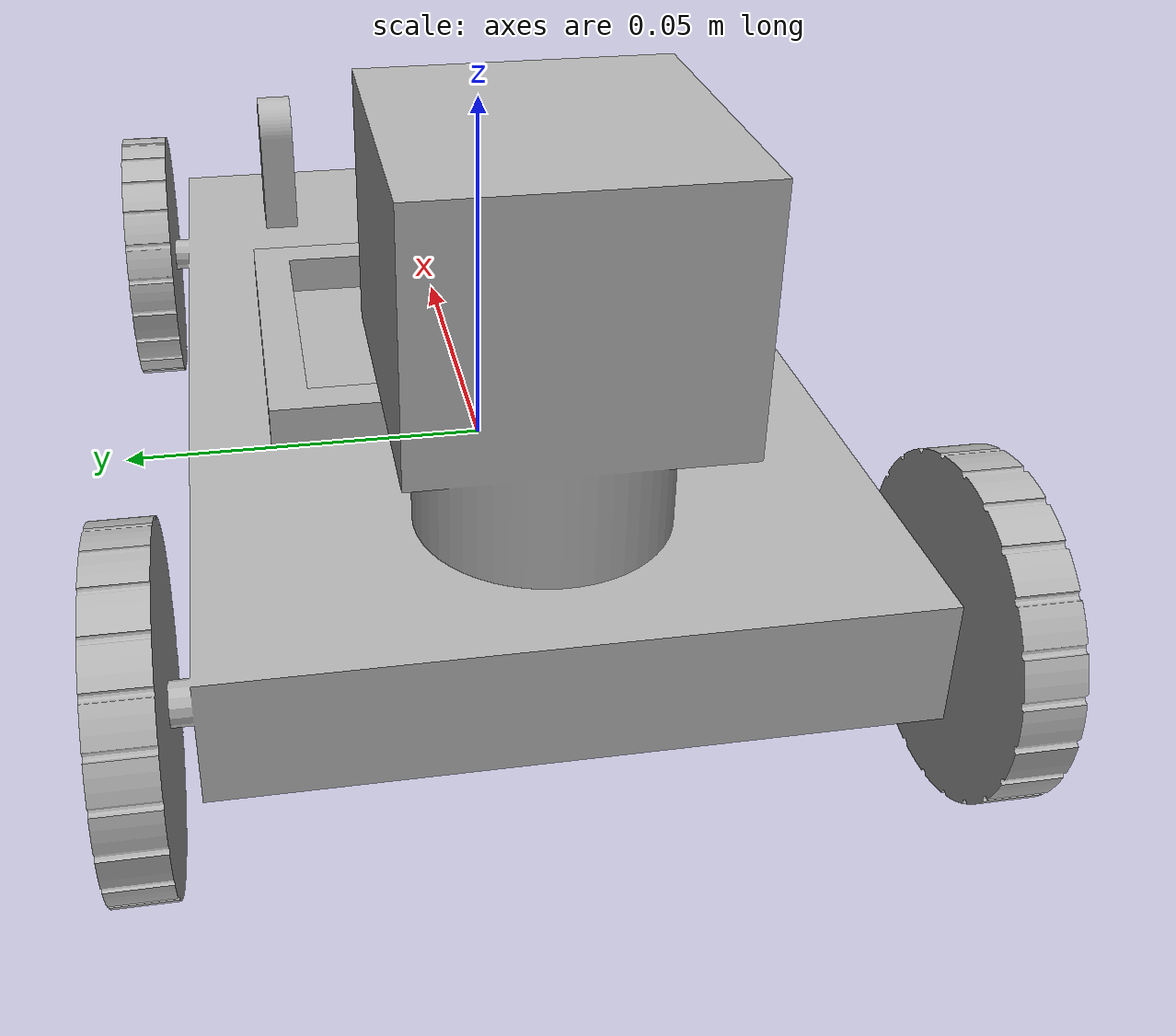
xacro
<?xml version="1.0" ?>
<robot name="Roblox" xmlns:xacro="http://www.ros.org/wiki/xacro">

<xacro:include filename="$(find Roblox_description)/urdf/materials.xacro" />
<xacro:include filename="$(find Roblox_description)/urdf/Roblox.trans" />
<xacro:include filename="$(find Roblox_description)/urdf/Roblox.gazebo" />
<link name="base_link">
  <inertial>
    <origin xyz="-0.0004149296476484467 0.0 0.0075806807639669585" rpy="0 0 0"/>
    <mass value="1.337296126748008"/>
    <inertia ixx="0.000742" iyy="0.002227" izz="0.002917" ixy="-0.0" iyz="0.0" ixz="6e-06"/>
  </inertial>
  <visual>
    <origin xyz="0 0 0" rpy="0 0 0"/>
    <geometry>
      <mesh filename="package://Roblox_description/meshes/base_link.stl" scale="0.001 0.001 0.001"/>
    </geometry>
    <material name="silver"/>
  </visual>
  <collision>
    <origin xyz="0 0 0" rpy="0 0 0"/>
    <geometry>
      <mesh filename="package://Roblox_description/meshes/base_link.stl" scale="0.001 0.001 0.001"/>
    </geometry>
  </collision>
</link>

<link name="wheel_back_1">
  <inertial>
    <origin xyz="8.940654883105026e-10 -0.00350000000000001 7.450579389556289e-11" rpy="0 0 0"/>
    <mass value="0.06747916431000829"/>
    <inertia ixx="7e-06" iyy="1.4e-05" izz="7e-06" ixy="-0.0" iyz="-0.0" ixz="-0.0"/>
  </inertial>
  <visual>
    <origin xyz="-0.06 -0.05 -0.005" rpy="0 0 0"/>
    <geometry>
      <mesh filename="package://Roblox_description/meshes/wheel_back_1.stl" scale="0.001 0.001 0.001"/>
    </geometry>
    <material name="silver"/>
  </visual>
  <collision>
    <origin xyz="-0.06 -0.05 -0.005" rpy="0 0 0"/>
    <geometry>
      <mesh filename="package://Roblox_description/meshes/wheel_back_1.stl" scale="0.001 0.001 0.001"/>
    </geometry>
  </collision>
</link>

<link name="wheel_front_1">
  <inertial>
    <origin xyz="-8.940655021882904e-10 -0.00350000000000001 7.450580517126548e-11" rpy="0 0 0"/>
    <mass value="0.0674791643100083"/>
    <inertia ixx="7e-06" iyy="1.4e-05" izz="7e-06" ixy="0.0" iyz="-0.0" ixz="-0.0"/>
  </inertial>
  <visual>
    <origin xyz="0.06 -0.05 -0.005" rpy="0 0 0"/>
    <geometry>
      <mesh filename="package://Roblox_description/meshes/wheel_front_1.stl" scale="0.001 0.001 0.001"/>
    </geometry>
    <material name="silver"/>
  </visual>
  <collision>
    <origin xyz="0.06 -0.05 -0.005" rpy="0 0 0"/>
    <geometry>
      <mesh filename="package://Roblox_description/meshes/wheel_front_1.stl" scale="0.001 0.001 0.001"/>
    </geometry>
  </collision>
</link>

<link name="wheel_back_2">
  <inertial>
    <origin xyz="8.940654883105026e-10 0.00350000000000001 7.450579389556289e-11" rpy="0 0 0"/>
    <mass value="0.06747916431000829"/>
    <inertia ixx="7e-06" iyy="1.4e-05" izz="7e-06" ixy="-0.0" iyz="-0.0" ixz="-0.0"/>
  </inertial>
  <visual>
    <origin xyz="-0.06 0.05 -0.005" rpy="0 0 0"/>
    <geometry>
      <mesh filename="package://Roblox_description/meshes/wheel_back_2.stl" scale="0.001 0.001 0.001"/>
    </geometry>
    <material name="silver"/>
  </visual>
  <collision>
    <origin xyz="-0.06 0.05 -0.005" rpy="0 0 0"/>
    <geometry>
      <mesh filename="package://Roblox_description/meshes/wheel_back_2.stl" scale="0.001 0.001 0.001"/>
    </geometry>
  </collision>
</link>

<link name="wheel_front_2">
  <inertial>
    <origin xyz="-8.940655021882904e-10 0.00350000000000001 7.450580517126548e-11" rpy="0 0 0"/>
    <mass value="0.0674791643100083"/>
    <inertia ixx="7e-06" iyy="1.4e-05" izz="7e-06" ixy="-0.0" iyz="-0.0" ixz="-0.0"/>
  </inertial>
  <visual>
    <origin xyz="0.06 0.05 -0.005" rpy="0 0 0"/>
    <geometry>
      <mesh filename="package://Roblox_description/meshes/wheel_front_2.stl" scale="0.001 0.001 0.001"/>
    </geometry>
    <material name="silver"/>
  </visual>
  <collision>
    <origin xyz="0.06 0.05 -0.005" rpy="0 0 0"/>
    <geometry>
      <mesh filename="package://Roblox_description/meshes/wheel_front_2.stl" scale="0.001 0.001 0.001"/>
    </geometry>
  </collision>
</link>

<link name="camera_top_1">
  <inertial>
    <origin xyz="-6.70582547823706e-10 2.6216226561402063e-18 0.02264531650017722" rpy="0 0 0"/>
    <mass value="0.4255197034289349"/>
    <inertia ixx="0.000104" iyy="0.000112" izz="9.4e-05" ixy="0.0" iyz="0.0" ixz="-0.0"/>
  </inertial>
  <visual>
    <origin xyz="0.045 -0.0 -0.02" rpy="0 0 0"/>
    <geometry>
      <mesh filename="package://Roblox_description/meshes/camera_top_1.stl" scale="0.001 0.001 0.001"/>
    </geometry>
    <material name="silver"/>
  </visual>
  <collision>
    <origin xyz="0.045 -0.0 -0.02" rpy="0 0 0"/>
    <geometry>
      <mesh filename="package://Roblox_description/meshes/camera_top_1.stl" scale="0.001 0.001 0.001"/>
    </geometry>
  </collision>
</link>

<link name="lidar_1">
  <inertial>
    <origin xyz="0.04 0.0 0.005000000000000001" rpy="0 0 0"/>
    <mass value="0.0314"/>
    <inertia ixx="1e-06" iyy="1e-06" izz="2e-06" ixy="0.0" iyz="0.0" ixz="0.0"/>
  </inertial>
  <visual>
    <origin xyz="-0.0 -0.0 -0.015" rpy="0 0 0"/>
    <geometry>
      <mesh filename="package://Roblox_description/meshes/lidar_1.stl" scale="0.001 0.001 0.001"/>
    </geometry>
    <material name="silver"/>
  </visual>
  <collision>
    <origin xyz="-0.0 -0.0 -0.015" rpy="0 0 0"/>
    <geometry>
      <mesh filename="package://Roblox_description/meshes/lidar_1.stl" scale="0.001 0.001 0.001"/>
    </geometry>
  </collision>
</link>

<link name="arduino_module_base_1">
  <inertial>
    <origin xyz="0.0 0.0 0.0025000000000000022" rpy="0 0 0"/>
    <mass value="0.03924999999999999"/>
    <inertia ixx="1.9e-05" iyy="1.4e-05" izz="3.3e-05" ixy="0.0" iyz="0.0" ixz="0.0"/>
  </inertial>
  <visual>
    <origin xyz="-0.0 -0.0 -0.015" rpy="0 0 0"/>
    <geometry>
      <mesh filename="package://Roblox_description/meshes/arduino_module_base_1.stl" scale="0.001 0.001 0.001"/>
    </geometry>
    <material name="silver"/>
  </visual>
  <collision>
    <origin xyz="-0.0 -0.0 -0.015" rpy="0 0 0"/>
    <geometry>
      <mesh filename="package://Roblox_description/meshes/arduino_module_base_1.stl" scale="0.001 0.001 0.001"/>
    </geometry>
  </collision>
</link>

<link name="ultrasonic_sensor_1">
  <inertial>
    <origin xyz="0.04999999999999999 0.014999999999999996 0.009496395772899326" rpy="0 0 0"/>
    <mass value="0.007428843895667492"/>
    <inertia ixx="0.0" iyy="0.0" izz="0.0" ixy="0.0" iyz="-0.0" ixz="-0.0"/>
  </inertial>
  <visual>
    <origin xyz="-0.0 0.04 -0.015" rpy="0 0 0"/>
    <geometry>
      <mesh filename="package://Roblox_description/meshes/ultrasonic_sensor_1.stl" scale="0.001 0.001 0.001"/>
    </geometry>
    <material name="silver"/>
  </visual>
  <collision>
    <origin xyz="-0.0 0.04 -0.015" rpy="0 0 0"/>
    <geometry>
      <mesh filename="package://Roblox_description/meshes/ultrasonic_sensor_1.stl" scale="0.001 0.001 0.001"/>
    </geometry>
  </collision>
</link>

<link name="infra_red_sensor__1">
  <inertial>
    <origin xyz="-0.020000000000000025 -0.015 0.009496395772899326" rpy="0 0 0"/>
    <mass value="0.007428843895667492"/>
    <inertia ixx="0.0" iyy="0.0" izz="0.0" ixy="-0.0" iyz="0.0" ixz="-0.0"/>
  </inertial>
  <visual>
    <origin xyz="-0.07 -0.04 -0.015" rpy="0 0 0"/>
    <geometry>
      <mesh filename="package://Roblox_description/meshes/infra_red_sensor__1.stl" scale="0.001 0.001 0.001"/>
    </geometry>
    <material name="silver"/>
  </visual>
  <collision>
    <origin xyz="-0.07 -0.04 -0.015" rpy="0 0 0"/>
    <geometry>
      <mesh filename="package://Roblox_description/meshes/infra_red_sensor__1.stl" scale="0.001 0.001 0.001"/>
    </geometry>
  </collision>
</link>

<joint name="wheelshaft_rev_joint1" type="continuous">
  <origin xyz="0.06 0.05 0.005" rpy="0 0 0"/>
  <parent link="base_link"/>
  <child link="wheel_back_1"/>
  <axis xyz="0.0 1.0 0.0"/>
</joint>

<joint name="wheelshaft_rev_joint2" type="continuous">
  <origin xyz="-0.06 0.05 0.005" rpy="0 0 0"/>
  <parent link="base_link"/>
  <child link="wheel_front_1"/>
  <axis xyz="0.0 1.0 0.0"/>
</joint>

<joint name="wheelshaft_rev_joint3" type="continuous">
  <origin xyz="0.06 -0.05 0.005" rpy="0 0 0"/>
  <parent link="base_link"/>
  <child link="wheel_back_2"/>
  <axis xyz="0.0 -1.0 0.0"/>
</joint>

<joint name="wheelshaft_rev_joint4" type="continuous">
  <origin xyz="-0.06 -0.05 0.005" rpy="0 0 0"/>
  <parent link="base_link"/>
  <child link="wheel_front_2"/>
  <axis xyz="0.0 -1.0 0.0"/>
</joint>

<joint name="tele_cam_rotatory_rev_joint" type="continuous">
  <origin xyz="-0.045 0.0 0.02" rpy="0 0 0"/>
  <parent link="base_link"/>
  <child link="camera_top_1"/>
  <axis xyz="0.0 0.0 1.0"/>
</joint>

<joint name="lidar_support" type="fixed">
  <origin xyz="0.0 0.0 0.015" rpy="0 0 0"/>
  <parent link="base_link"/>
  <child link="lidar_1"/>
</joint>

<joint name="arduino_module_rigid" type="fixed">
  <origin xyz="0.0 0.0 0.015" rpy="0 0 0"/>
  <parent link="base_link"/>
  <child link="arduino_module_base_1"/>
</joint>

<joint name="ultrasonic_support_joint" type="fixed">
  <origin xyz="0.0 -0.04 0.015" rpy="0 0 0"/>
  <parent link="base_link"/>
  <child link="ultrasonic_sensor_1"/>
</joint>

<joint name="infrared_support_joint" type="fixed">
  <origin xyz="0.07 0.04 0.015" rpy="0 0 0"/>
  <parent link="base_link"/>
  <child link="infra_red_sensor__1"/>
</joint>

</robot>

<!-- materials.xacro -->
<robot name="Roblox" xmlns:xacro="http://www.ros.org/wiki/xacro" >

<material name="silver">
  <color rgba="0.700 0.700 0.700 1.000"/>
</material>

</robot>

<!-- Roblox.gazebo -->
<robot name="Roblox" xmlns:xacro="http://www.ros.org/wiki/xacro" >

<xacro:property name="body_color" value="Gazebo/Silver" />

<gazebo>
  <plugin name="control" filename="libgazebo_ros_control.so"/>
</gazebo>
<gazebo reference="base_link">
  <material>${body_color}</material>
  <mu1>0.2</mu1>
  <mu2>0.2</mu2>
  <selfCollide>true</selfCollide>
  <gravity>true</gravity>
</gazebo>

<gazebo reference="wheel_back_1">
  <material>${body_color}</material>
  <mu1>0.2</mu1>
  <mu2>0.2</mu2>
  <selfCollide>true</selfCollide>
</gazebo>

<gazebo reference="wheel_front_1">
  <material>${body_color}</material>
  <mu1>0.2</mu1>
  <mu2>0.2</mu2>
  <selfCollide>true</selfCollide>
</gazebo>

<gazebo reference="wheel_back_2">
  <material>${body_color}</material>
  <mu1>0.2</mu1>
  <mu2>0.2</mu2>
  <selfCollide>true</selfCollide>
</gazebo>

<gazebo reference="wheel_front_2">
  <material>${body_color}</material>
  <mu1>0.2</mu1>
  <mu2>0.2</mu2>
  <selfCollide>true</selfCollide>
</gazebo>

<gazebo reference="camera_top_1">
  <material>${body_color}</material>
  <mu1>0.2</mu1>
  <mu2>0.2</mu2>
  <selfCollide>true</selfCollide>
</gazebo>

<gazebo reference="lidar_1">
  <material>${body_color}</material>
  <mu1>0.2</mu1>
  <mu2>0.2</mu2>
  <selfCollide>true</selfCollide>
</gazebo>

<gazebo reference="arduino_module_base_1">
  <material>${body_color}</material>
  <mu1>0.2</mu1>
  <mu2>0.2</mu2>
  <selfCollide>true</selfCollide>
</gazebo>

<gazebo reference="ultrasonic_sensor_1">
  <material>${body_color}</material>
  <mu1>0.2</mu1>
  <mu2>0.2</mu2>
  <selfCollide>true</selfCollide>
</gazebo>

<gazebo reference="infra_red_sensor__1">
  <material>${body_color}</material>
  <mu1>0.2</mu1>
  <mu2>0.2</mu2>
  <selfCollide>true</selfCollide>
</gazebo>

</robot>
